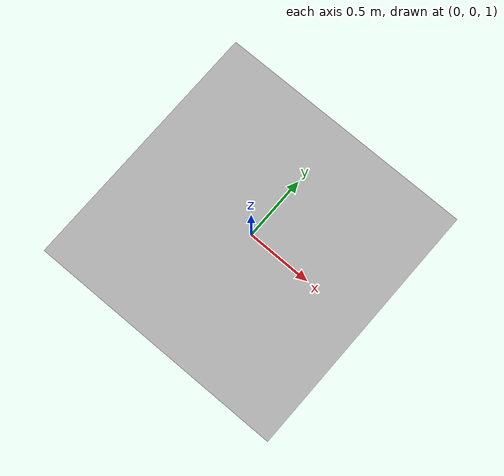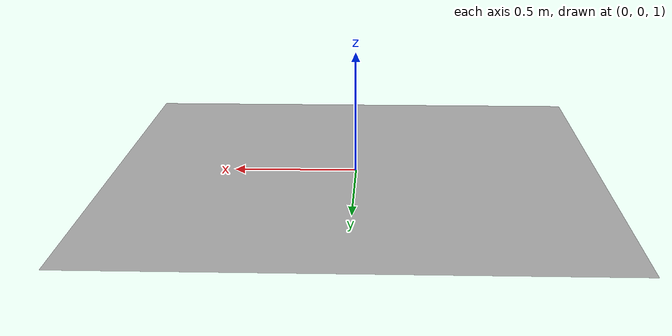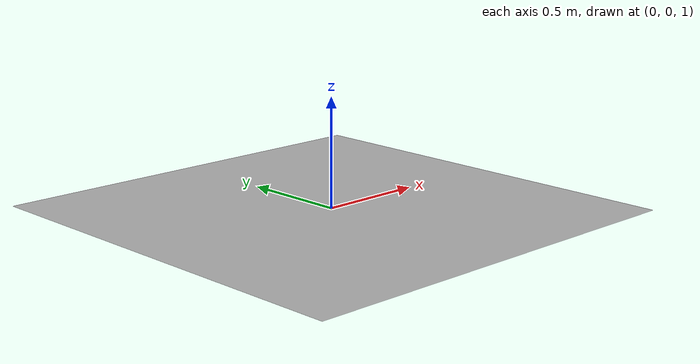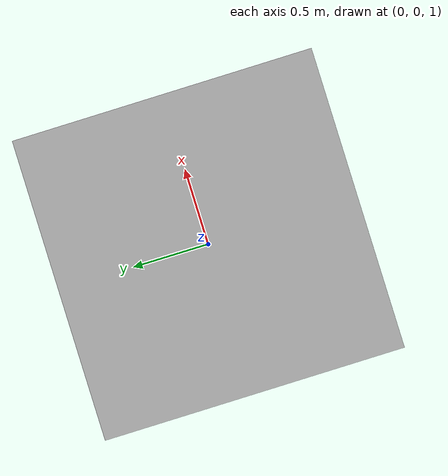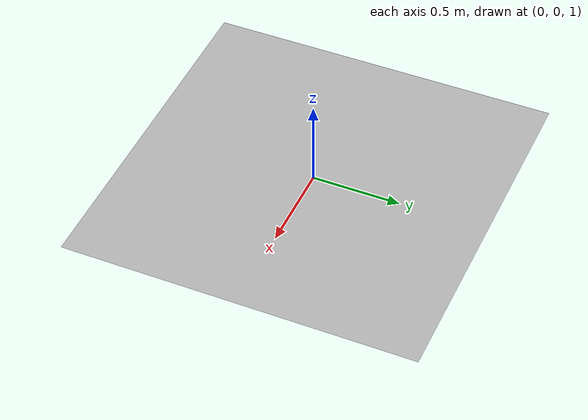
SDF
<?xml version='1.0' encoding='us-ascii'?>
<sdf version="1.6">
  <model name="floor_Living room">
    <static>true</static>
    <link name="link">
      <collision name="collision">
        <pose>0 0 0 0 0 0</pose>
        <geometry>
          <mesh>
            <uri>model://generation_wr5rh6zb9btd_world_1/floor_Living room/meshes/floor_Living room.dae</uri>
            <scale>1 1 1</scale>
          </mesh>
        </geometry>
        <surface>
          <contact>
            <collide_bitmask>2</collide_bitmask>
          </contact>
          <friction>
            <ode>
              <mu>100</mu>
              <mu2>50</mu2>
            </ode>
          </friction>
        </surface>
      </collision>
      <visual name="visual">
        <meta>
          <layer>0</layer>
        </meta>
        <pose>0 0 0 0 0 0</pose>
        <geometry>
          <mesh>
            <uri>model://generation_wr5rh6zb9btd_world_1/floor_Living room/meshes/floor_Living room.dae</uri>
            <scale>1 1 1</scale>
          </mesh>
        </geometry>
      </visual>
    </link>
  </model>
</sdf>
